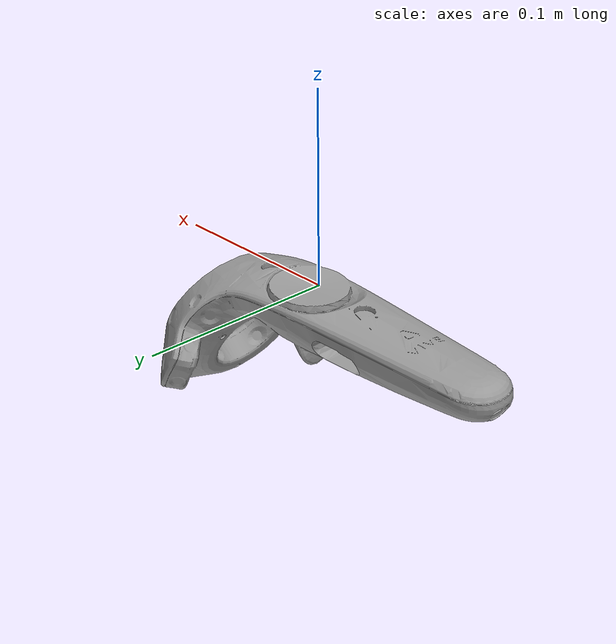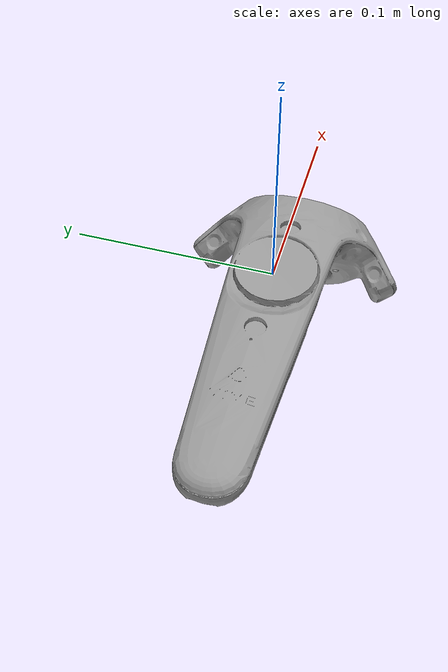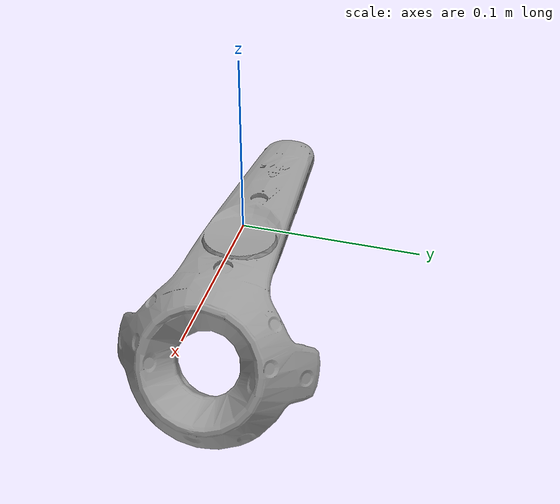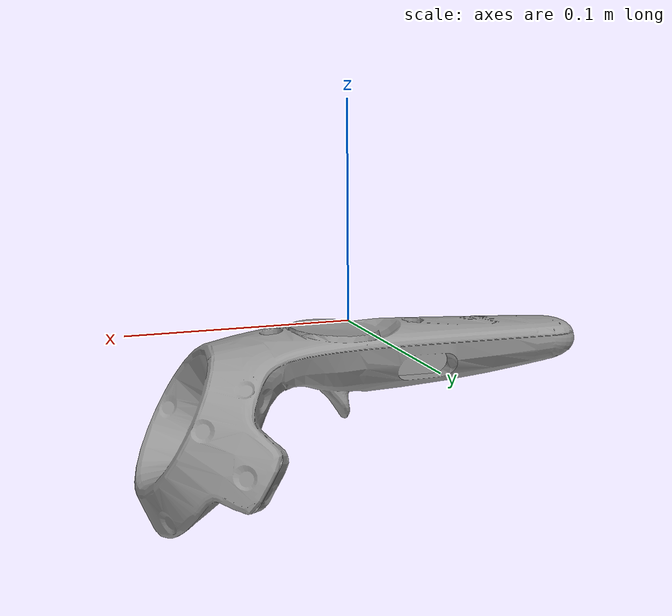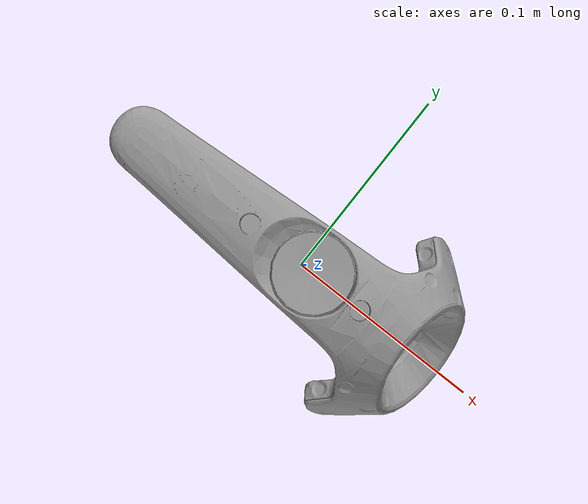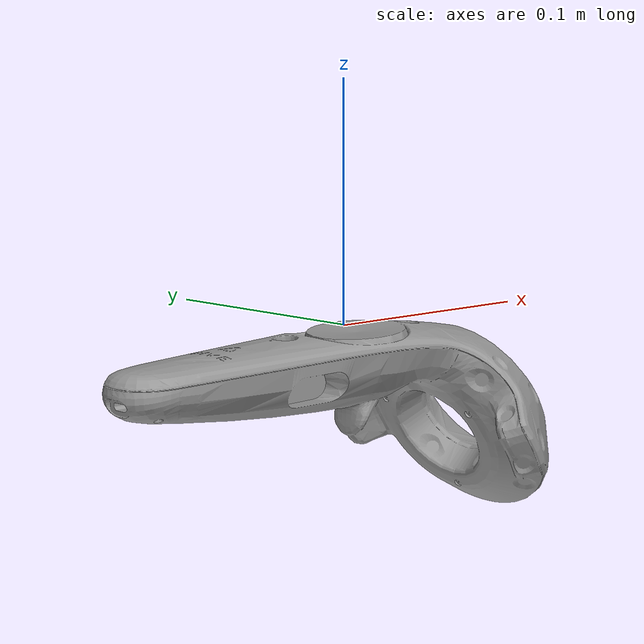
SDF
<?xml version="1.0" ?>
<sdf version="1.6">
  <model name="Vive_Controller">
    <static>true</static>
    <link name="link">
      <collision name="collision">
        <pose>0 0 0 3.14159 0 1.57075</pose>
        <geometry>
          <mesh>
            <scale>0.001 0.001 0.001</scale>
            <uri>model://Vive_Controller/meshes/HTC_Vive_controller.stl</uri>
          </mesh>
        </geometry>
      </collision>
      <visual name="visual">
        <pose>0 0 0 3.14159 0 1.57075</pose>
        <geometry>
          <mesh>
            <scale>0.001 0.001 0.001</scale>
            <uri>model://Vive_Controller/meshes/HTC_Vive_controller.stl</uri>
          </mesh>
        </geometry>
         <material>
          <script>
            <uri>model://Vive_Controller/materials/gazebo.material</uri>
            <name>Gazebo/Grey</name>
          </script>
        </material>
      </visual>
    </link>
  </model>
</sdf>
